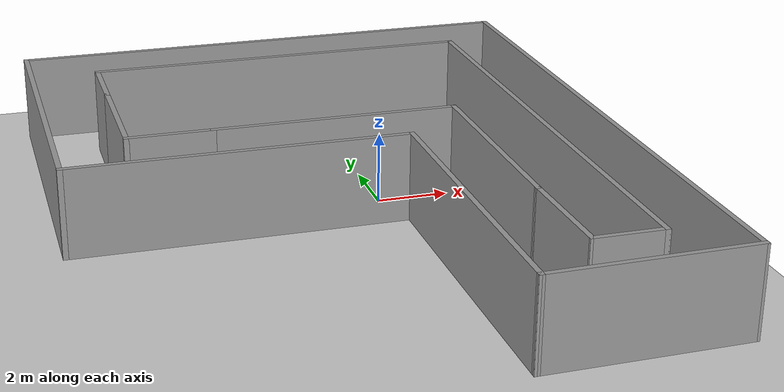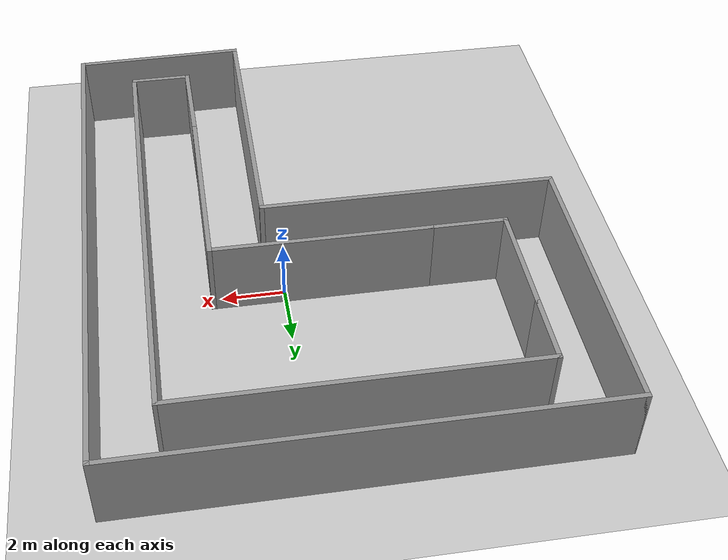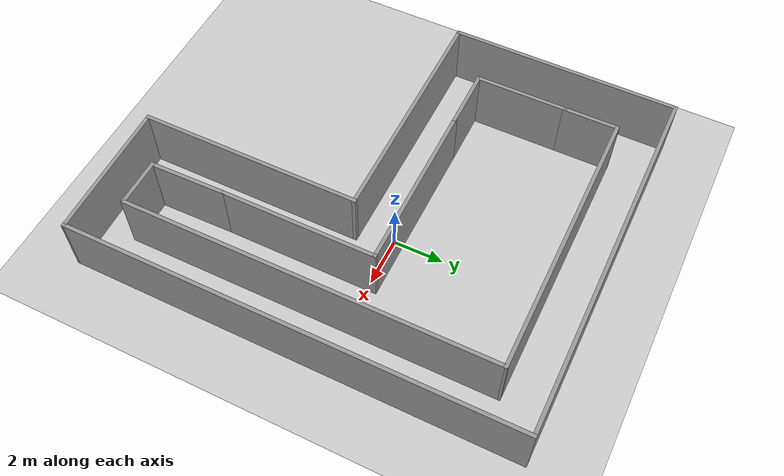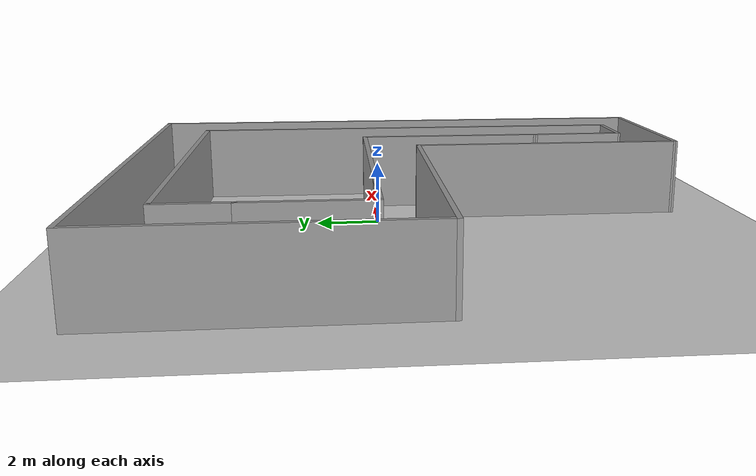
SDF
<sdf version="1.7">
 <world name="default">
  <light name="sun" type="directional">
   <pose>0 0 10 0 -0 0</pose>
   <diffuse>0.8 0.8 0.8 1</diffuse>
   <specular>0.2 0.2 0.2 1</specular>
   <attenuation>
    <range>1000</range>
    <constant>0.9</constant>
    <linear>0.01</linear>
    <quadratic>0.001</quadratic>
   </attenuation>
   <direction>-0.5 0.1 -0.9</direction>
   <spot><inner_angle>0</inner_angle><outer_angle>0</outer_angle><falloff>0</falloff></spot>
  </light>
  <model name="ground_plane">
   <static>1</static>
   <link name="link">
    <collision name="collision">
     <geometry><plane><normal>0 0 1</normal><size>100 100</size></plane></geometry>
     <surface>
      <contact><collide_bitmask>65535</collide_bitmask></contact>
      <friction><ode><mu>100</mu><mu2>50</mu2></ode></friction>
     </surface>
    </collision>
    <visual name="visual">
     <cast_shadows>0</cast_shadows>
     <geometry><plane><normal>0 0 1</normal><size>100 100</size></plane></geometry>
     <material>
      <script><uri>file://media/materials/scripts/gazebo.material</uri><name>Gazebo/Grey</name></script>
     </material>
    </visual>
   </link>
  </model>
  <gravity>0 0 -9.8</gravity>
  <magnetic_field>6e-06 2.3e-05 -4.2e-05</magnetic_field>
  <atmosphere type="adiabatic"/>
  <physics type="ode">
   <max_step_size>0.001</max_step_size>
   <real_time_factor>1</real_time_factor>
   <real_time_update_rate>1000</real_time_update_rate>
  </physics>
  <scene><ambient>0.4 0.4 0.4 1</ambient><background>0.7 0.7 0.7 1</background><shadows>1</shadows></scene>
  <spherical_coordinates>
   <surface_model>EARTH_WGS84</surface_model>
   <latitude_deg>0</latitude_deg>
   <longitude_deg>0</longitude_deg>
   <elevation>0</elevation>
   <heading_deg>0</heading_deg>
  </spherical_coordinates>
  <model name="corners">
   <pose>-1.43338 -1.27392 0 0 -0 0</pose>
   <link name="Wall_0">
    <collision name="Wall_0_Collision">
     <geometry><box><size>6.25 0.15 2.5</size></box></geometry>
     <pose>0 0 1.25 0 -0 0</pose>
    </collision>
    <visual name="Wall_0_Visual">
     <pose>0 0 1.25 0 -0 0</pose>
     <geometry><box><size>6.25 0.15 2.5</size></box></geometry>
     <material>
      <script><uri>file://media/materials/scripts/gazebo.material</uri><name>Gazebo/Grey</name></script>
      <ambient>1 1 1 1</ambient>
     </material>
     <meta><layer>0</layer></meta>
    </visual>
    <pose>3.71111 -1.46375 0 0 -0 -1.5708</pose>
   </link>
   <link name="Wall_10">
    <collision name="Wall_10_Collision">
     <geometry><box><size>3.20041 0.15 2.5</size></box></geometry>
     <pose>0 0 1.25 0 -0 0</pose>
    </collision>
    <visual name="Wall_10_Visual">
     <pose>0 0 1.25 0 -0 0</pose>
     <geometry><box><size>3.20041 0.15 2.5</size></box></geometry>
     <material>
      <script><uri>file://media/materials/scripts/gazebo.material</uri><name>Gazebo/Grey</name></script>
      <ambient>1 1 1 1</ambient>
     </material>
     <meta><layer>0</layer></meta>
    </visual>
    <pose>3.73611 -6.03875 0 0 -0 1.58719</pose>
   </link>
   <link name="Wall_12">
    <collision name="Wall_12_Collision">
     <geometry><box><size>9 0.15 2.5</size></box></geometry>
     <pose>0 0 1.25 0 -0 0</pose>
    </collision>
    <visual name="Wall_12_Visual">
     <pose>0 0 1.25 0 -0 0</pose>
     <geometry><box><size>9 0.15 2.5</size></box></geometry>
     <material>
      <script><uri>file://media/materials/scripts/gazebo.material</uri><name>Gazebo/Grey</name></script>
      <ambient>1 1 1 1</ambient>
     </material>
     <meta><layer>0</layer></meta>
    </visual>
    <pose>1.92433 -4.54932 0 0 -0 1.5708</pose>
   </link>
   <link name="Wall_14">
    <collision name="Wall_14_Collision">
     <geometry><box><size>9.5 0.15 2.5</size></box></geometry>
     <pose>0 0 1.25 0 -0 0</pose>
    </collision>
    <visual name="Wall_14_Visual">
     <pose>0 0 1.25 0 -0 0</pose>
     <geometry><box><size>9.5 0.15 2.5</size></box></geometry>
     <material>
      <script><uri>file://media/materials/scripts/gazebo.material</uri><name>Gazebo/Grey</name></script>
      <ambient>1 1 1 1</ambient>
     </material>
     <meta><layer>0</layer></meta>
    </visual>
    <pose>-2.75068 -0.124325 0 0 -0 3.14159</pose>
   </link>
   <link name="Wall_15">
    <collision name="Wall_15_Collision">
     <geometry><box><size>9.25 0.15 2.5</size></box></geometry>
     <pose>0 0 1.25 0 -0 0</pose>
    </collision>
    <visual name="Wall_15_Visual">
     <pose>0 0 1.25 0 -0 0</pose>
     <geometry><box><size>9.25 0.15 2.5</size></box></geometry>
     <material>
      <script><uri>file://media/materials/scripts/gazebo.material</uri><name>Gazebo/Grey</name></script>
      <ambient>1 1 1 1</ambient>
     </material>
     <meta><layer>0</layer></meta>
    </visual>
    <pose>-7.42568 4.42568 0 0 -0 1.5708</pose>
   </link>
   <link name="Wall_16">
    <collision name="Wall_16_Collision">
     <geometry><box><size>15 0.15 2.5</size></box></geometry>
     <pose>0 0 1.25 0 -0 0</pose>
    </collision>
    <visual name="Wall_16_Visual">
     <pose>0 0 1.25 0 -0 0</pose>
     <geometry><box><size>15 0.15 2.5</size></box></geometry>
     <material>
      <script><uri>file://media/materials/scripts/gazebo.material</uri><name>Gazebo/Grey</name></script>
      <ambient>1 1 1 1</ambient>
     </material>
     <meta><layer>0</layer></meta>
    </visual>
    <pose>-0.000675 8.97568 0 0 -0 0</pose>
   </link>
   <link name="Wall_17">
    <collision name="Wall_17_Collision">
     <geometry><box><size>18 0.15 2.5</size></box></geometry>
     <pose>0 0 1.25 0 -0 0</pose>
    </collision>
    <visual name="Wall_17_Visual">
     <pose>0 0 1.25 0 -0 0</pose>
     <geometry><box><size>18 0.15 2.5</size></box></geometry>
     <material>
      <script><uri>file://media/materials/scripts/gazebo.material</uri><name>Gazebo/Grey</name></script>
      <ambient>1 1 1 1</ambient>
     </material>
     <meta><layer>0</layer></meta>
    </visual>
    <pose>7.42432 0.050675 0 0 -0 -1.5708</pose>
   </link>
   <link name="Wall_18">
    <collision name="Wall_18_Collision">
     <geometry><box><size>5.65091 0.15 2.5</size></box></geometry>
     <pose>0 0 1.25 0 -0 0</pose>
    </collision>
    <visual name="Wall_18_Visual">
     <pose>0 0 1.25 0 -0 0</pose>
     <geometry><box><size>5.65091 0.15 2.5</size></box></geometry>
     <material>
      <script><uri>file://media/materials/scripts/gazebo.material</uri><name>Gazebo/Grey</name></script>
      <ambient>1 1 1 1</ambient>
     </material>
     <meta><layer>0</layer></meta>
    </visual>
    <pose>4.67432 -8.92432 0 0 -0 -3.12341</pose>
   </link>
   <link name="Wall_2">
    <collision name="Wall_2_Collision">
     <geometry><box><size>7 0.15 2.5</size></box></geometry>
     <pose>0 0 1.25 0 -0 0</pose>
    </collision>
    <visual name="Wall_2_Visual">
     <pose>0 0 1.25 0 -0 0</pose>
     <geometry><box><size>7 0.15 2.5</size></box></geometry>
     <material>
      <script><uri>file://media/materials/scripts/gazebo.material</uri><name>Gazebo/Grey</name></script>
      <ambient>1 1 1 1</ambient>
     </material>
     <meta><layer>0</layer></meta>
    </visual>
    <pose>0.286113 1.58625 0 0 -0 3.14159</pose>
   </link>
   <link name="Wall_3">
    <collision name="Wall_3_Collision">
     <geometry><box><size>2.5 0.15 2.5</size></box></geometry>
     <pose>0 0 1.25 0 -0 0</pose>
    </collision>
    <visual name="Wall_3_Visual">
     <pose>0 0 1.25 0 -0 0</pose>
     <geometry><box><size>2.5 0.15 2.5</size></box></geometry>
     <material>
      <script><uri>file://media/materials/scripts/gazebo.material</uri><name>Gazebo/Grey</name></script>
      <ambient>1 1 1 1</ambient>
     </material>
     <meta><layer>0</layer></meta>
    </visual>
    <pose>-4.31389 1.58625 0 0 -0 3.14159</pose>
   </link>
   <link name="Wall_4">
    <collision name="Wall_4_Collision">
     <geometry><box><size>3.75 0.15 2.5</size></box></geometry>
     <pose>0 0 1.25 0 -0 0</pose>
    </collision>
    <visual name="Wall_4_Visual">
     <pose>0 0 1.25 0 -0 0</pose>
     <geometry><box><size>3.75 0.15 2.5</size></box></geometry>
     <material>
      <script><uri>file://media/materials/scripts/gazebo.material</uri><name>Gazebo/Grey</name></script>
      <ambient>1 1 1 1</ambient>
     </material>
     <meta><layer>0</layer></meta>
    </visual>
    <pose>-5.48889 3.38625 0 0 -0 1.5708</pose>
   </link>
   <link name="Wall_5">
    <collision name="Wall_5_Collision">
     <geometry><box><size>2.25 0.15 2.5</size></box></geometry>
     <pose>0 0 1.25 0 -0 0</pose>
    </collision>
    <visual name="Wall_5_Visual">
     <pose>0 0 1.25 0 -0 0</pose>
     <geometry><box><size>2.25 0.15 2.5</size></box></geometry>
     <material>
      <script><uri>file://media/materials/scripts/gazebo.material</uri><name>Gazebo/Grey</name></script>
      <ambient>1 1 1 1</ambient>
     </material>
     <meta><layer>0</layer></meta>
    </visual>
    <pose>-5.48889 6.23625 0 0 -0 1.5708</pose>
   </link>
   <link name="Wall_6">
    <collision name="Wall_6_Collision">
     <geometry><box><size>11.25 0.15 2.5</size></box></geometry>
     <pose>0 0 1.25 0 -0 0</pose>
    </collision>
    <visual name="Wall_6_Visual">
     <pose>0 0 1.25 0 -0 0</pose>
     <geometry><box><size>11.25 0.15 2.5</size></box></geometry>
     <material>
      <script><uri>file://media/materials/scripts/gazebo.material</uri><name>Gazebo/Grey</name></script>
      <ambient>1 1 1 1</ambient>
     </material>
     <meta><layer>0</layer></meta>
    </visual>
    <pose>0.061113 7.28625 0 0 -0 0</pose>
   </link>
   <link name="Wall_7">
    <collision name="Wall_7_Collision">
     <geometry><box><size>15.0002 0.15 2.5</size></box></geometry>
     <pose>0 0 1.25 0 -0 0</pose>
    </collision>
    <visual name="Wall_7_Visual">
     <pose>0 0 1.25 0 -0 0</pose>
     <geometry><box><size>15.0002 0.15 2.5</size></box></geometry>
     <material>
      <script><uri>file://media/materials/scripts/gazebo.material</uri><name>Gazebo/Grey</name></script>
      <ambient>1 1 1 1</ambient>
     </material>
     <meta><layer>0</layer></meta>
    </visual>
    <pose>5.62441 -0.138748 0 0 -0 -1.569</pose>
   </link>
   <link name="Wall_8">
    <collision name="Wall_8_Collision">
     <geometry><box><size>2 0.15 2.5</size></box></geometry>
     <pose>0 0 1.25 0 -0 0</pose>
    </collision>
    <visual name="Wall_8_Visual">
     <pose>0 0 1.25 0 -0 0</pose>
     <geometry><box><size>2 0.15 2.5</size></box></geometry>
     <material>
      <script><uri>file://media/materials/scripts/gazebo.material</uri><name>Gazebo/Grey</name></script>
      <ambient>1 1 1 1</ambient>
     </material>
     <meta><layer>0</layer></meta>
    </visual>
    <pose>4.68611 -7.56375 0 0 -0 3.14159</pose>
   </link>
   <static>1</static>
  </model>
 </world>
</sdf>
